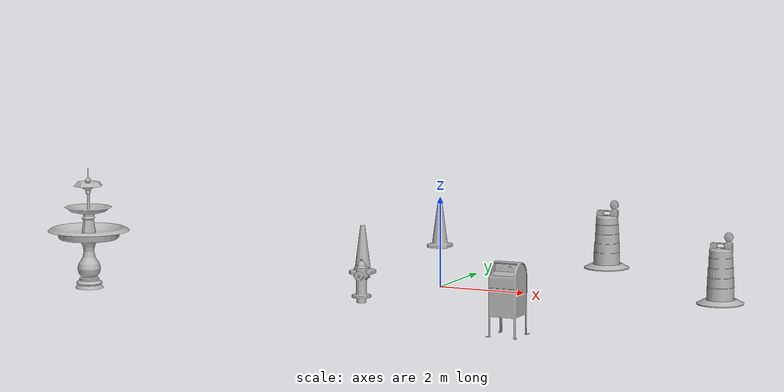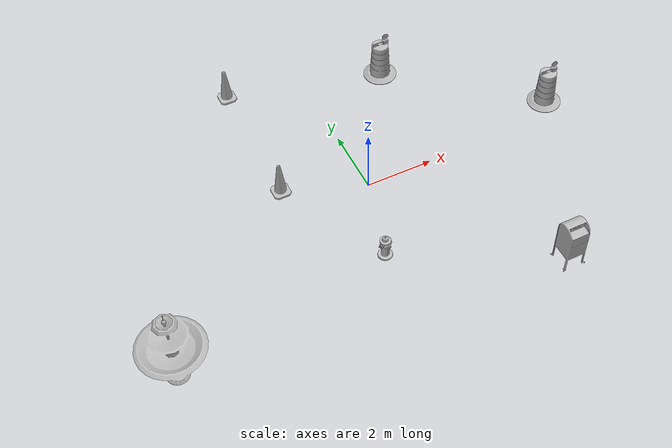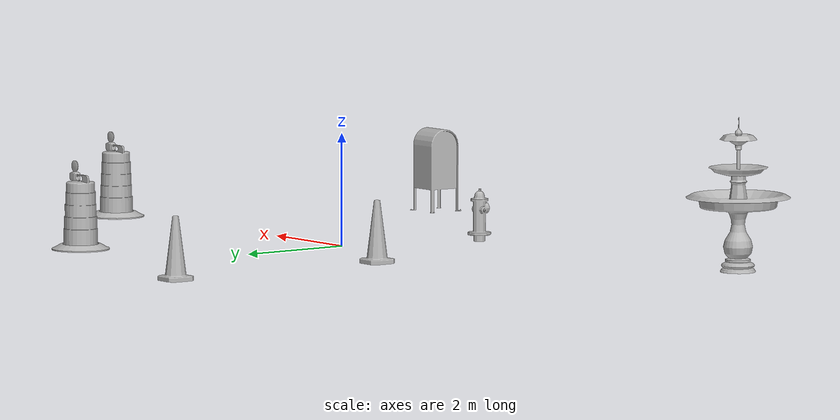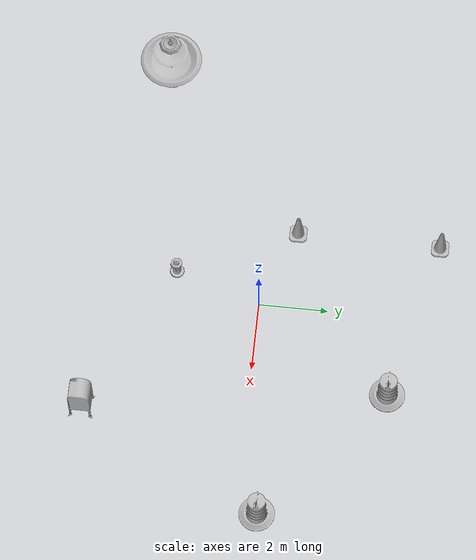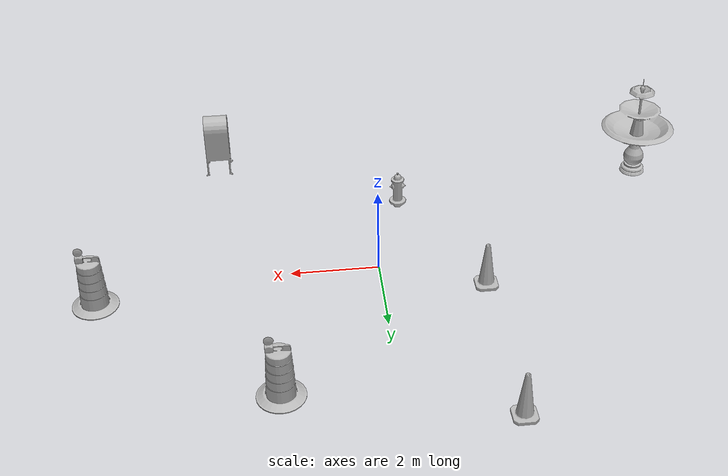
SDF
<?xml version='1.0'?>
<sdf version='1.7'>
  <model name='obstacles.world'>
    <model name='Construction Barrel'>
      <link name='link'>
        <inertial>
          <pose>0 0 0.4 0 -0 0</pose>
          <mass>500</mass>
          <inertia>
            <ixx>51.2096</ixx>
            <iyy>51.2096</iyy>
            <izz>25</izz>
            <ixy>0</ixy>
            <ixz>0</ixz>
            <iyz>0</iyz>
          </inertia>
        </inertial>
        <collision name='collision'>
          <geometry>
            <mesh>
              <uri>model://construction_barrel/meshes/construction_barrel.dae</uri>
            </mesh>
          </geometry>
        </collision>
        <visual name='visual'>
          <geometry>
            <mesh>
              <uri>model://construction_barrel/meshes/construction_barrel.dae</uri>
            </mesh>
          </geometry>
        </visual>
      </link>
      <pose>2.37333 3.92629 0 0 -0 0</pose>
    </model>
    <model name='Construction Barrel_0'>
      <link name='link'>
        <inertial>
          <pose>0 0 0.4 0 -0 0</pose>
          <mass>500</mass>
          <inertia>
            <ixx>51.2096</ixx>
            <iyy>51.2096</iyy>
            <izz>25</izz>
            <ixy>0</ixy>
            <ixz>0</ixz>
            <iyz>0</iyz>
          </inertia>
        </inertial>
        <collision name='collision'>
          <geometry>
            <mesh>
              <uri>model://construction_barrel/meshes/construction_barrel.dae</uri>
            </mesh>
          </geometry>
        </collision>
        <visual name='visual'>
          <geometry>
            <mesh>
              <uri>model://construction_barrel/meshes/construction_barrel.dae</uri>
            </mesh>
          </geometry>
        </visual>
      </link>
      <pose>6.28498 0.606643 0 0 -0 0</pose>
    </model>
    <model name='Construction Cone'>
      <link name='link'>
        <collision name='collision'>
          <geometry>
            <mesh>
              <scale>10 10 10</scale>
              <uri>model://construction_cone/meshes/construction_cone.dae</uri>
            </mesh>
          </geometry>
        </collision>
        <visual name='visual'>
          <geometry>
            <mesh>
              <scale>10 10 10</scale>
              <uri>model://construction_cone/meshes/construction_cone.dae</uri>
            </mesh>
          </geometry>
        </visual>
      </link>
      <pose>-2.31679 0.903764 0 0 -0 0</pose>
    </model>
    <model name='Construction Cone_0'>
      <link name='link'>
        <collision name='collision'>
          <geometry>
            <mesh>
              <scale>10 10 10</scale>
              <uri>model://construction_cone/meshes/construction_cone.dae</uri>
            </mesh>
          </geometry>
        </collision>
        <visual name='visual'>
          <geometry>
            <mesh>
              <scale>10 10 10</scale>
              <uri>model://construction_cone/meshes/construction_cone.dae</uri>
            </mesh>
          </geometry>
        </visual>
      </link>
      <pose>-2.28955 5.05562 0 0 -0 0</pose>
    </model>
    <model name='fire_hydrant'>
      <static>1</static>
      <link name='link'>
        <collision name='collision'>
          <geometry>
            <mesh>
              <uri>model://fire_hydrant/meshes/fire_hydrant.dae</uri>
            </mesh>
          </geometry>
        </collision>
        <visual name='visual'>
          <geometry>
            <mesh>
              <uri>model://fire_hydrant/meshes/fire_hydrant.dae</uri>
            </mesh>
          </geometry>
        </visual>
      </link>
      <pose>-0.737696 -2.46174 0 0 -0 0</pose>
    </model>
    <model name='fountain'>
      <static>1</static>
      <link name='link'>
        <collision name='collision'>
          <geometry>
            <mesh>
              <uri>model://fountain/meshes/fountain.dae</uri>
            </mesh>
          </geometry>
        </collision>
        <visual name='visual'>
          <geometry>
            <mesh>
              <uri>model://fountain/meshes/fountain.dae</uri>
            </mesh>
          </geometry>
        </visual>
      </link>
      <pose>-6.93323 -3.3378 0 0 -0 0</pose>
    </model>
    <model name='postbox'>
      <static>1</static>
      <link name='link'>
        <collision name='collision'>
          <geometry>
            <mesh>
              <uri>model://postbox/meshes/postbox.dae</uri>
            </mesh>
          </geometry>
        </collision>
        <visual name='visual'>
          <geometry>
            <mesh>
              <uri>model://postbox/meshes/postbox.dae</uri>
            </mesh>
          </geometry>
        </visual>
      </link>
      <pose>3.61896 -4.69278 0 0 -0 0</pose>
    </model>
    <static>0</static>
    <allow_auto_disable>1</allow_auto_disable>
  </model>
</sdf>
